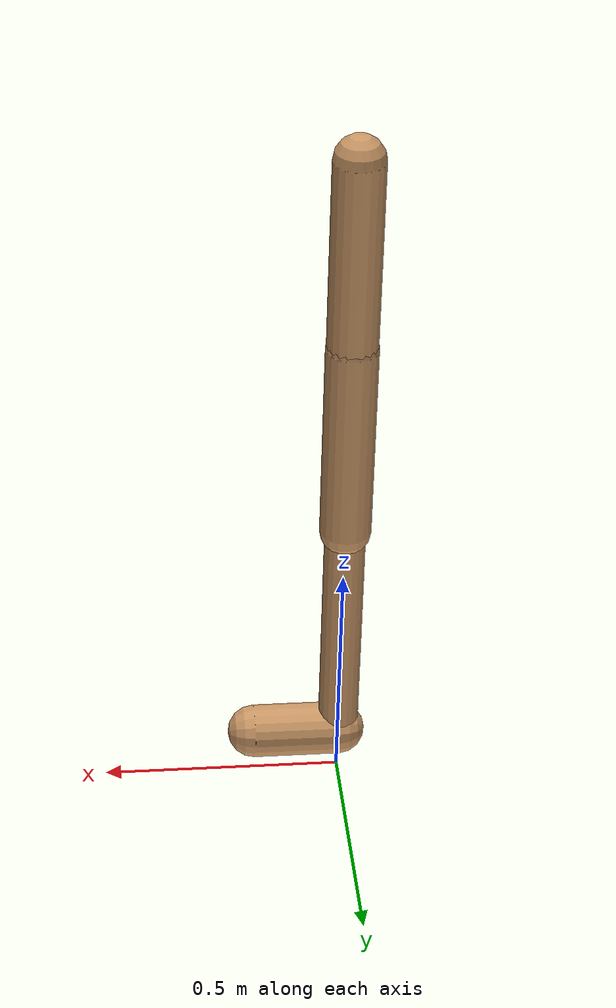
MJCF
<mujoco model="walker2d">
  <compiler angle="degree" coordinate="global" inertiafromgeom="true" />
  <default>
    <joint armature="0.01" damping=".1" limited="true" />
    <geom conaffinity="0" condim="3" contype="1" density="1000" friction="0.8 .1 .1" rgba="0.8 0.6 .4 1" />
  </default>
  <option integrator="RK4" timestep="0.002" />
  <worldbody>

    <body name="torso" pos="0 0 -0.045587605111152084">
      <joint armature="0" axis="1 0 0" damping="0" limited="false" name="ignorex" pos="0 0 0" stiffness="0" type="slide" />
      <joint armature="0" axis="0 0 1" damping="0" limited="false" name="ignorez" pos="0 0 0" ref="1.25" stiffness="0" type="slide" />
      <joint armature="0" axis="0 1 0" damping="0" limited="false" name="ignorey" pos="0 0 0" stiffness="0" type="hinge" />
      <geom fromto="0 0 1.45 0 0 1.05" name="torso_geom" size="0.05131394148011166" type="capsule" />
      <body name="thigh">
        <joint axis="0 -1 0" name="thigh_joint" pos="0 0 1.05" range="-150 0" type="hinge" />
        <geom fromto="0.0 0.0 1.05 0.0 0.0 0.6215941287368615" name="thigh_geom" size="0.05292950892165306" type="capsule" />
        <body name="leg" pos="0.0 0.0 0.021594128736861506">
          <joint axis="0 -1 0" name="leg_joint" pos="0 0 0.6" range="-150 0" type="hinge" />
          <geom fromto="0.0 0.0 0.6 0.0 0.0 0.12399347637429058" name="leg_geom" size="0.04234360713732244" type="capsule" />
          <body name="foot" pos="0.0 0.0 0.02399347637429057">
            <joint axis="0 -1 0" name="foot_joint" pos="0 0 0.1" range="-45 45" type="hinge" />
            <geom fromto="0.0 0.0 0.09999999999999999 0.18040262905843063 0.0 0.09999999999999999" name="foot_geom" size="0.05591830044562592" type="capsule" />
          </body>
        </body>
      </body>

      <body name="thigh_left">
        <joint axis="0 -1 0" name="thigh_left_joint" pos="0 0 1.05" range="-150 0" type="hinge" />
        <geom fromto="0.0 0.0 1.05 0.0 0.0 0.6215941287368615" name="thigh_left_geom" rgba=".7 .3 .6 1" size="0.05292950892165306" type="capsule" />
        <body name="leg_left" pos="0.0 0.0 0.021594128736861506">
          <joint axis="0 -1 0" name="leg_left_joint" pos="0 0 0.6" range="-150 0" type="hinge" />
          <geom fromto="0.0 0.0 0.6 0.0 0.0 0.12399347637429058" name="leg_left_geom" rgba=".7 .3 .6 1" size="0.04234360713732244" type="capsule" />
          <body name="foot_left" pos="0.0 0.0 0.02399347637429057">
            <joint axis="0 -1 0" name="foot_left_joint" pos="0 0 0.1" range="-45 45" type="hinge" />
            <geom fromto="0.0 0.0 0.09999999999999999 0.18040262905843063 0.0 0.09999999999999999" name="foot_left_geom" rgba=".7 .3 .6 1" size="0.05591830044562592" type="capsule" />
          </body>
        </body>
      </body>
    </body>
  </worldbody>
  <actuator>

    <motor ctrllimited="true" ctrlrange="-1.0 1.0" gear="100" joint="thigh_joint" />
    <motor ctrllimited="true" ctrlrange="-1.0 1.0" gear="100" joint="leg_joint" />
    <motor ctrllimited="true" ctrlrange="-1.0 1.0" gear="100" joint="foot_joint" />
    <motor ctrllimited="true" ctrlrange="-1.0 1.0" gear="100" joint="thigh_left_joint" />
    <motor ctrllimited="true" ctrlrange="-1.0 1.0" gear="100" joint="leg_left_joint" />
    <motor ctrllimited="true" ctrlrange="-1.0 1.0" gear="100" joint="foot_left_joint" />

  </actuator>
</mujoco>
